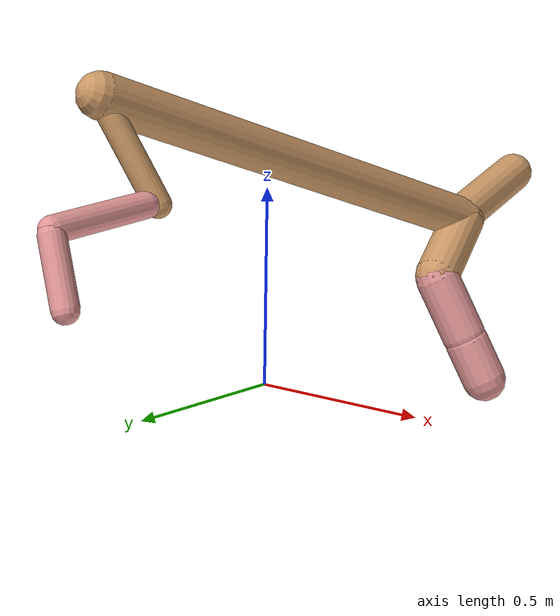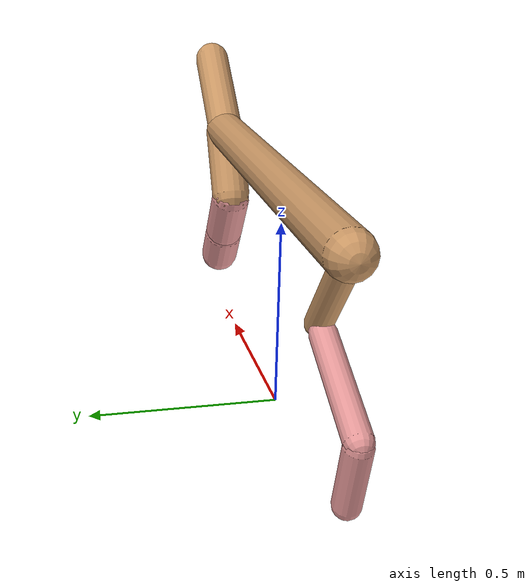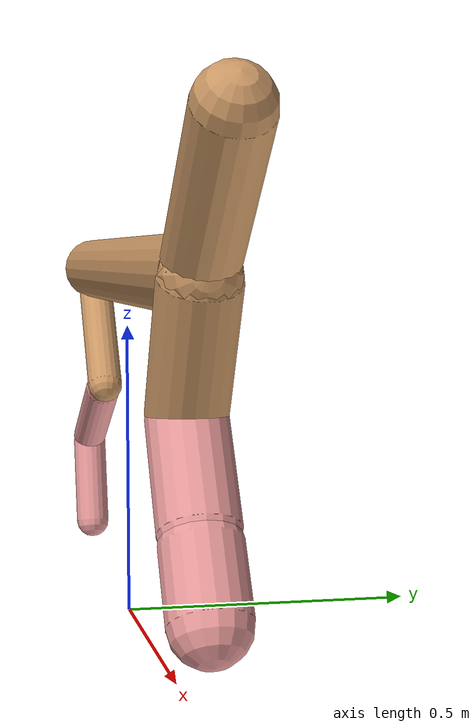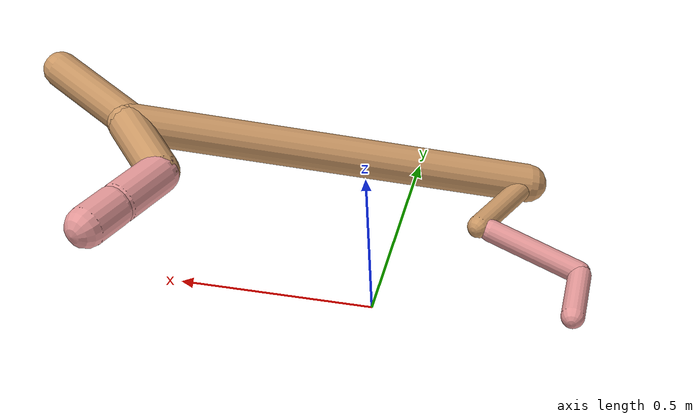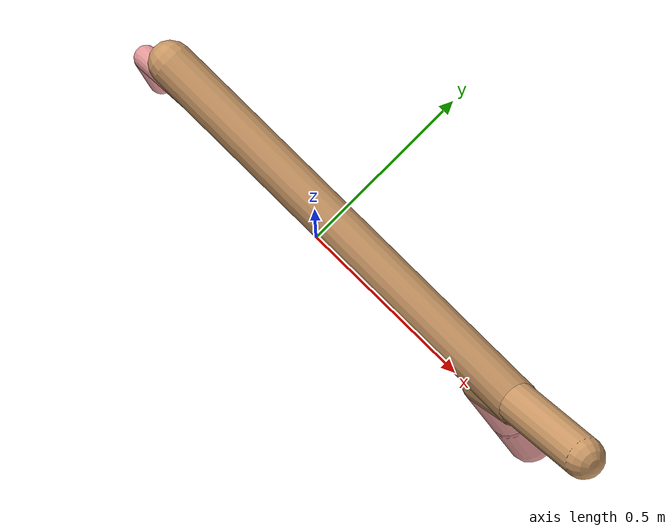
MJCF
<mujoco model="cheetah">
  <compiler angle="radian" coordinate="local" inertiafromgeom="true" settotalmass="14" />
  <default>
    <joint armature=".1" damping=".01" limited="true" solimplimit="0 .8 .03" solreflimit=".02 1" stiffness="8" />
    <geom conaffinity="0" condim="3" contype="1" friction="0.8 .1 .1" rgba="0.8 0.6 .4 1" solimp="0.0 0.8 0.01" solref="0.02 1" />
    <motor ctrllimited="true" ctrlrange="-1 1" />
  </default>
  <size nstack="300000" nuser_geom="1" />
  <option gravity="0 0 -9.81" timestep="0.01" />
  <worldbody>
    <body name="torso" pos="0.0 0.0 0.5953462556329966">
      <joint armature="0" axis="1 0 0" damping="0" limited="false" name="ignorex" pos="0 0 0" stiffness="0" type="slide" />
      <joint armature="0" axis="0 0 1" damping="0" limited="false" name="ignorez" pos="0 0 0" stiffness="0" type="slide" />
      <joint armature="0" axis="0 1 0" damping="0" limited="false" name="ignorey" pos="0 0 0" stiffness="0" type="hinge" />
      <geom fromto="-0.5 0.0 0.0 0.7029224255947879 0.0 0.0" name="torso" size="0.057583459497676404" type="capsule" />
      <geom axisangle="0 1 0 .87" name="head" pos="0.8029224255947879 0.0 0.1" size="0.05379968826012418 0.15" type="capsule" />

      <body name="bthigh" pos="-.5 0 0">
        <joint axis="0 1 0" damping="6" name="bthigh" pos="0 0 0" range="-.52 1.05" stiffness="240" type="hinge" />
        <geom axisangle="0 1 0 -3.8" name="bthigh" pos="0.09215912326690903 0.0 -0.11980686024698173" size="0.03279193723746717 0.1321400059888004" type="capsule" />
        <body name="bshin" pos="0.14431824653381806 0.0 -0.22961372049396345">
          <joint axis="0 1 0" damping="4.5" name="bshin" pos="0 0 0" range="-.785 .785" stiffness="180" type="hinge" />
          <geom axisangle="0 1 0 -2.03" name="bshin" pos="-0.12810103966926245 0.0 -0.06405051983463123" rgba="0.9 0.6 0.6 1" size="0.03279193723746717 0.1366965579194487" type="capsule" />
          <body name="bfoot" pos="-0.2562020793385249 0.0 -0.12810103966926245">
            <joint axis="0 1 0" damping="3" name="bfoot" pos="0 0 0" range="-.4 .785" stiffness="120" type="hinge" />
            <geom axisangle="0 1 0 -.27" name="bfoot" pos="0.027536721010184503 0.0 -0.08903539793292989" rgba="0.9 0.6 0.6 1" size="0.03279193723746717 0.08566317629618786" type="capsule" />
            <inertial mass="10" />
          </body>
        </body>
      </body>
      <body name="fthigh" pos="0.7029224255947879 0.0 0.0">
        <joint axis="0 1 0" damping="4.5" name="fthigh" pos="0 0 0" range="-1.5 0.8" stiffness="180" type="hinge" />
        <geom axisangle="0 1 0 .52" name="fthigh" pos="-0.056906393754275544 0.0 -0.09755381786447236" size="0.058886386220781045 0.10701397265876612" type="capsule" />
        <body name="fshin" pos="-0.11381278750855109 0.0 -0.1951076357289447">
          <joint axis="0 1 0" damping="3" name="fshin" pos="0 0 0" range="-1.2 1.1" stiffness="120" type="hinge" />
          <geom axisangle="0 1 0 -.6" name="fshin" pos="0.052874099283723545 0.0 -0.07321029131592491" rgba="0.9 0.6 0.6 1" size="0.058886386220781045 0.08528933159270081" type="capsule" />
          <body name="ffoot" pos="0.10574819856744709 0.0 -0.14642058263184982">
            <joint axis="0 1 0" damping="1.5" name="ffoot" pos="0 0 0" range="-3.1 -0.3" stiffness="60" type="hinge" />
            <geom axisangle="0 1 0 -.6" name="ffoot" pos="0.03760413602481455 0.0 -0.05849532270526708" rgba="0.9 0.6 0.6 1" size="0.058886386220781045 0.05632314350461375" type="capsule" />
            <inertial mass="10" />
          </body>
        </body>
      </body>
    </body>
  </worldbody>
  <actuator>
    <motor gear="120" joint="bthigh" name="bthigh" />
    <motor gear="90" joint="bshin" name="bshin" />
    <motor gear="60" joint="bfoot" name="bfoot" />
    <motor gear="120" joint="fthigh" name="fthigh" />
    <motor gear="60" joint="fshin" name="fshin" />
    <motor gear="30" joint="ffoot" name="ffoot" />
  </actuator>
</mujoco>
